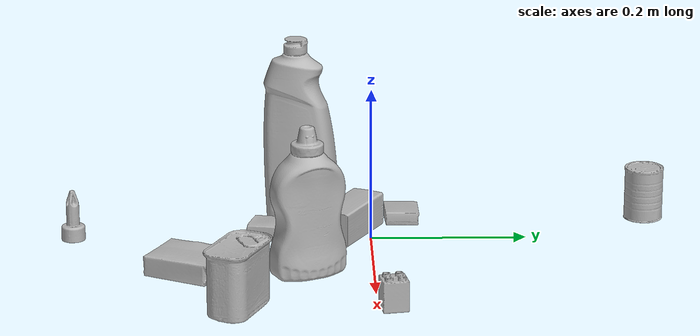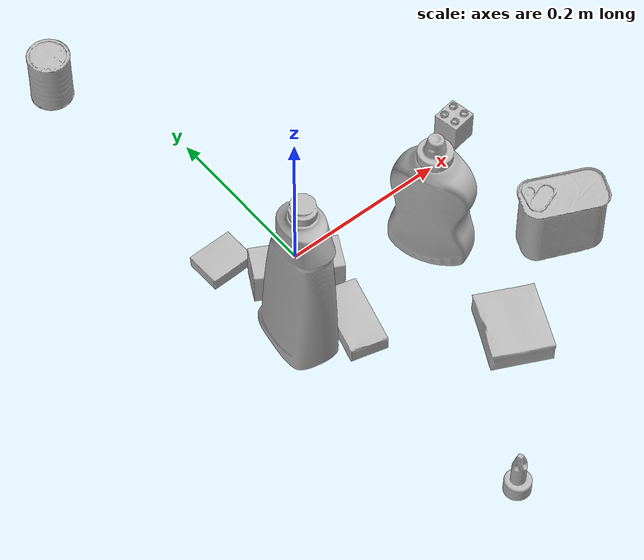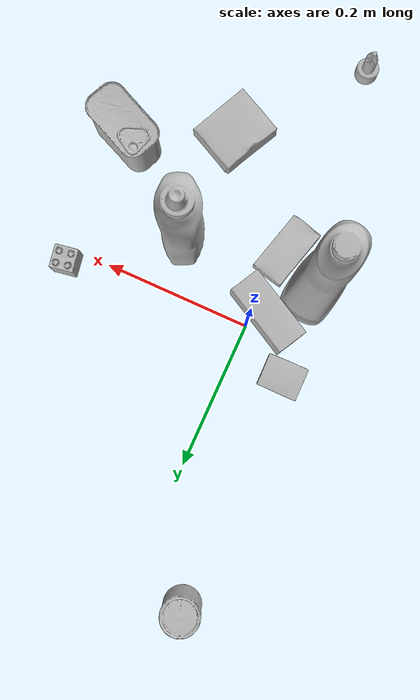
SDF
<sdf version="1.4">
  <world name="default">
    <light name="light1" type="point">
      <pose>0 0 1 0 0 0</pose>
      <diffuse>3 3 3 1</diffuse>
      <specular>3 3 3 1</specular>
    </light>
    <light name="light2" type="point">
      <pose>0 0.5 2 0 0 0</pose>
      <diffuse>1 1 1 1</diffuse>
      <specular>1 1 1 1</specular>
    </light>
    <light name="light3" type="point">
      <pose>0 0.5 2 0 0 0</pose>
      <diffuse>3 3 3 1</diffuse>
      <specular>3 3 3 1</specular>
    </light>
    <scene>
      <ambient>0.7 0.7 0.7</ambient>
    </scene>
    <model name="bottle1">
      <link name="link_bottle1">
        <collision name="default">
          <geometry>
            <mesh>
              <uri>model://bleach_cleanser/collision_meshes/collision.obj</uri>
              <scale>1.0 1.0 1.0</scale>
            </mesh>
          </geometry>
          <surface>
            <friction>
              <ode>
                <mu>0.5</mu>
                <mu2>0.5</mu2>
              </ode>
            </friction>
          <contact>
        <ode>
            <max_vel>0</max_vel>
            <min_depth>0.0001</min_depth>
            <kp>1e8</kp>
        </ode>
    </contact></surface>
        </collision>
        <visual name="default">
          <geometry>
            <mesh>
              <uri>model://bleach_cleanser/visual_meshes/visual.dae</uri>
              <scale>1.0 1.0 1.0</scale>
            </mesh>
          </geometry>
        </visual>
        <inertial>
          <mass>1.578364610671997</mass>
          <pose>0.00012193182919872925 0.003783882362768054 -0.024421613663434982 -0.07381669869228723 0.000420116582496686 -0.006875050642452563</pose>
          <inertia>
            <ixx>0.00768213</ixx>
            <iyy>0.0071586203</iyy>
            <izz>0.0013134446</izz>
            <ixy>0</ixy>
            <ixz>0</ixz>
            <iyz>0</iyz>
          </inertia>
        </inertial>
      </link>
      <pose>-0.06366746127605438 -0.08682761341333389 0.12578411400318146 -0.00019965540483122816 1.6549499033211615e-05 2.9761389099734803</pose>
    </model>
    <model name="bottle2">
      <link name="link_bottle2">
        <collision name="default">
          <geometry>
            <mesh>
              <uri>model://mustard_bottle/collision_meshes/collision.obj</uri>
              <scale>1.0 1.0 1.0</scale>
            </mesh>
          </geometry>
          <surface>
            <friction>
              <ode>
                <mu>0.5</mu>
                <mu2>0.5</mu2>
              </ode>
            </friction>
          <contact>
        <ode>
            <max_vel>0</max_vel>
            <min_depth>0.0001</min_depth>
            <kp>1e8</kp>
        </ode>
    </contact></surface>
        </collision>
        <visual name="default">
          <geometry>
            <mesh>
              <uri>model://mustard_bottle/visual_meshes/visual.dae</uri>
              <scale>1.0 1.0 1.0</scale>
            </mesh>
          </geometry>
        </visual>
        <inertial>
          <mass>0.5896905064582825</mass>
          <pose>0.000503245391882956 -0.00015647403779439628 -0.0174757931381464 0.00041823284967905286 0.0009465779461724547 0.024853724225743102</pose>
          <inertia>
            <ixx>0.00163749</ixx>
            <iyy>0.0014367587</iyy>
            <izz>0.00043156123</izz>
            <ixy>0</ixy>
            <ixz>0</ixz>
            <iyz>0</iyz>
          </inertia>
        </inertial>
      </link>
      <pose>0.12912291288375854 -0.08223581314086914 0.09615198522806168 1.507550120382504e-05 1.6568548082052075e-05 -2.7041206804033995</pose>
    </model>
    <model name="toy1">
      <link name="link_toy1">
        <collision name="default">
          <geometry>
            <mesh>
              <uri>model://b_lego_duplo/collision_meshes/collision.obj</uri>
              <scale>1.0 1.0 1.0</scale>
            </mesh>
          </geometry>
          <surface>
            <friction>
              <ode>
                <mu>0.5</mu>
                <mu2>0.5</mu2>
              </ode>
            </friction>
          <contact>
        <ode>
            <max_vel>0</max_vel>
            <min_depth>0.0001</min_depth>
            <kp>1e8</kp>
        </ode>
    </contact></surface>
        </collision>
        <visual name="default">
          <geometry>
            <mesh>
              <uri>model://b_lego_duplo/visual_meshes/visual.dae</uri>
              <scale>1.0 1.0 1.0</scale>
            </mesh>
          </geometry>
        </visual>
        <inertial>
          <mass>0.04927889630198479</mass>
          <pose>-0.00011053016351070255 -9.152428901870735e-06 0.0019294293597340584 -0.03749545918935276 -0.026353596882306905 0.4519115393215097</pose>
          <inertia>
            <ixx>1.0085294e-05</ixx>
            <iyy>1.015309e-05</iyy>
            <izz>8.985672e-06</izz>
            <ixy>0</ixy>
            <ixz>0</ixz>
            <iyz>0</iyz>
          </inertia>
        </inertial>
      </link>
      <pose>0.25004249811172485 0.019846877083182335 0.021814990788698196 9.945782184161883e-06 7.047268553255135e-06 -2.9760426735541894</pose>
    </model>
    <model name="toy2">
      <link name="link_toy2">
        <collision name="default">
          <geometry>
            <mesh>
              <uri>model://d_toy_airplane/collision_meshes/collision.obj</uri>
              <scale>1.0 1.0 1.0</scale>
            </mesh>
          </geometry>
          <surface>
            <friction>
              <ode>
                <mu>0.5</mu>
                <mu2>0.5</mu2>
              </ode>
            </friction>
          <contact>
        <ode>
            <max_vel>0</max_vel>
            <min_depth>0.0001</min_depth>
            <kp>1e8</kp>
        </ode>
    </contact></surface>
        </collision>
        <visual name="default">
          <geometry>
            <mesh>
              <uri>model://d_toy_airplane/visual_meshes/visual.dae</uri>
              <scale>1.0 1.0 1.0</scale>
            </mesh>
          </geometry>
        </visual>
        <inertial>
          <mass>0.023543989285826683</mass>
          <pose>9.41029647947289e-05 -5.8093268307857215e-05 -0.011728093028068542 0.0002670074791080515 0.004678977428991067 0.5194709842729006</pose>
          <inertia>
            <ixx>7.058034e-06</ixx>
            <iyy>7.063356e-06</iyy>
            <izz>2.1308651e-06</izz>
            <ixy>0</ixy>
            <ixz>0</ixz>
            <iyz>0</iyz>
          </inertia>
        </inertial>
      </link>
      <pose>-0.007845336571335793 -0.38434624671936035 0.03333836793899536 0.00022262659426458342 -5.6140053650335023e-05 -2.6771179696365093</pose>
    </model>
    <model name="can1">
      <link name="link_can1">
        <collision name="default">
          <geometry>
            <mesh>
              <uri>model://master_chef_can/collision_meshes/collision.obj</uri>
              <scale>0.5 0.5 0.5</scale>
            </mesh>
          </geometry>
          <surface>
            <friction>
              <ode>
                <mu>0.5</mu>
                <mu2>0.5</mu2>
              </ode>
            </friction>
          <contact>
        <ode>
            <max_vel>0</max_vel>
            <min_depth>0.0001</min_depth>
            <kp>1e8</kp>
        </ode>
    </contact></surface>
        </collision>
        <visual name="default">
          <geometry>
            <mesh>
              <uri>model://master_chef_can/visual_meshes/visual.dae</uri>
              <scale>0.5 0.5 0.5</scale>
            </mesh>
          </geometry>
        </visual>
        <inertial>
          <mass>0.13489052653312683</mass>
          <pose>-4.6619643399026245e-05 1.392684936263322e-07 -5.080000119050965e-05 -0.0017995055981966167 0.0006479432683086387 -0.6102521024359563</pose>
          <inertia>
            <ixx>7.9171594e-05</ixx>
            <iyy>7.85889e-05</iyy>
            <izz>4.3748354e-05</izz>
            <ixy>0</ixy>
            <ixz>0</ixz>
            <iyz>0</iyz>
          </inertia>
        </inertial>
      </link>
      <pose>-0.0737101212143898 0.36242198944091797 0.035301994532346725 -1.4487559760160618e-06 -1.1022901866482265e-06 -0.7635698203679321</pose>
    </model>
    <model name="can2">
      <link name="link_can2">
        <collision name="default">
          <geometry>
            <mesh>
              <uri>model://potted_meat_can/collision_meshes/collision.obj</uri>
              <scale>1.0 1.0 1.0</scale>
            </mesh>
          </geometry>
          <surface>
            <friction>
              <ode>
                <mu>0.5</mu>
                <mu2>0.5</mu2>
              </ode>
            </friction>
          <contact>
        <ode>
            <max_vel>0</max_vel>
            <min_depth>0.0001</min_depth>
            <kp>1e8</kp>
        </ode>
    </contact></surface>
        </collision>
        <visual name="default">
          <geometry>
            <mesh>
              <uri>model://potted_meat_can/visual_meshes/visual.dae</uri>
              <scale>1.0 1.0 1.0</scale>
            </mesh>
          </geometry>
        </visual>
        <inertial>
          <mass>0.4512253701686859</mass>
          <pose>0.00022888150124344975 -5.9891150158364326e-05 -0.0006367433816194534 -0.028093371406289817 -0.007232609295346345 0.015406271951796056</pose>
          <inertia>
            <ixx>0.00058045425</ixx>
            <iyy>0.00035267006</iyy>
            <izz>0.00042216998</izz>
            <ixy>0</ixy>
            <ixz>0</ixz>
            <iyz>0</iyz>
          </inertia>
        </inertial>
      </link>
      <pose>0.24754880368709564 -0.16640114784240723 0.04212799668312073 -7.924037496093655e-08 -2.0962729620397566e-07 -2.0050707055729564</pose>
    </model>
    <model name="box1">
      <link name="link_box1">
        <collision name="default">
          <geometry>
            <mesh>
              <uri>model://pudding_box/collision_meshes/collision.obj</uri>
              <scale>0.5 0.5 0.5</scale>
            </mesh>
          </geometry>
          <surface>
            <friction>
              <ode>
                <mu>0.5</mu>
                <mu2>0.5</mu2>
              </ode>
            </friction>
          <contact>
        <ode>
            <max_vel>0</max_vel>
            <min_depth>0.0001</min_depth>
            <kp>1e8</kp>
        </ode>
    </contact></surface>
        </collision>
        <visual name="default">
          <geometry>
            <mesh>
              <uri>model://pudding_box/visual_meshes/visual.dae</uri>
              <scale>0.5 0.5 0.5</scale>
            </mesh>
          </geometry>
        </visual>
        <inertial>
          <mass>0.02510015107691288</mass>
          <pose>0.00024474109522998333 0.0004033942532259971 -0.0002594413817860186 0.005213101332996491 -0.0066037987089797995 0.020079823298230236</pose>
          <inertia>
            <ixx>7.093607e-06</ixx>
            <iyy>4.7726294e-06</iyy>
            <izz>1.04755645e-05</izz>
            <ixy>0</ixy>
            <ixz>0</ixz>
            <iyz>0</iyz>
          </inertia>
        </inertial>
      </link>
      <pose>-0.0719890296459198 0.04202636331319809 0.009862905368208885 0.022347237756785744 -0.011392660343939515 -1.5622873688184218</pose>
    </model>
    <model name="box2">
      <link name="link_box2">
        <collision name="default">
          <geometry>
            <mesh>
              <uri>model://gelatin_box/collision_meshes/collision.obj</uri>
              <scale>1.0 1.0 1.0</scale>
            </mesh>
          </geometry>
          <surface>
            <friction>
              <ode>
                <mu>0.5</mu>
                <mu2>0.5</mu2>
              </ode>
            </friction>
          <contact>
        <ode>
            <max_vel>0</max_vel>
            <min_depth>0.0001</min_depth>
            <kp>1e8</kp>
        </ode>
    </contact></surface>
        </collision>
        <visual name="default">
          <geometry>
            <mesh>
              <uri>model://gelatin_box/visual_meshes/visual.dae</uri>
              <scale>1.0 1.0 1.0</scale>
            </mesh>
          </geometry>
        </visual>
        <inertial>
          <mass>0.2452477514743805</mass>
          <pose>0.000431961816502735 0.00011156871187267825 -0.0003640321083366871 -0.0010503720803081407 -0.004755818225601415 0.01644055574590794</pose>
          <inertia>
            <ixx>0.0001731249</ixx>
            <iyy>0.0001236622</iyy>
            <izz>0.00026353472</izz>
            <ixy>0</ixy>
            <ixz>0</ixz>
            <iyz>0</iyz>
          </inertia>
        </inertial>
      </link>
      <pose>0.11982683837413788 -0.23199401795864105 0.015168310143053532 0.005597511188989699 -0.00730457598990359 2.6794553153525933</pose>
    </model>
    <model name="box3">
      <link name="link_box3">
        <collision name="default">
          <geometry>
            <mesh>
              <uri>model://sugar_box/collision_meshes/collision.obj</uri>
              <scale>0.5 0.5 0.5</scale>
            </mesh>
          </geometry>
          <surface>
            <friction>
              <ode>
                <mu>0.5</mu>
                <mu2>0.5</mu2>
              </ode>
            </friction>
          <contact>
        <ode>
            <max_vel>0</max_vel>
            <min_depth>0.0001</min_depth>
            <kp>1e8</kp>
        </ode>
    </contact></surface>
        </collision>
        <visual name="default">
          <geometry>
            <mesh>
              <uri>model://sugar_box/visual_meshes/visual.dae</uri>
              <scale>0.5 0.5 0.5</scale>
            </mesh>
          </geometry>
        </visual>
        <inertial>
          <mass>0.12277840822935104</mass>
          <pose>0.0005171863595023751 1.9245549992774613e-05 -0.00018182402709499002 -0.0004046257474220826 0.0010506635214397083 0.0026153787892127145</pose>
          <inertia>
            <ixx>2.5574656e-05</ixx>
            <iyy>8.2662555e-05</iyy>
            <izz>9.895694e-05</izz>
            <ixy>0</ixy>
            <ixz>0</ixz>
            <iyz>0</iyz>
          </inertia>
        </inertial>
      </link>
      <pose>-0.00918641034513712 -0.11326224356889725 0.011399304494261742 0.0007755112259388102 -0.023432436654135386 1.3068131312923323</pose>
    </model>
    <model name="box4">
      <link name="link_box4">
        <collision name="default">
          <geometry>
            <mesh>
              <uri>model://wood_block/collision_meshes/collision.obj</uri>
              <scale>0.5 0.5 0.5</scale>
            </mesh>
          </geometry>
          <surface>
            <friction>
              <ode>
                <mu>0.5</mu>
                <mu2>0.5</mu2>
              </ode>
            </friction>
          <contact>
        <ode>
            <max_vel>0</max_vel>
            <min_depth>0.0001</min_depth>
            <kp>1e8</kp>
        </ode>
    </contact></surface>
        </collision>
        <visual name="default">
          <geometry>
            <mesh>
              <uri>model://wood_block/visual_meshes/visual.dae</uri>
              <scale>0.5 0.5 0.5</scale>
            </mesh>
          </geometry>
        </visual>
        <inertial>
          <mass>0.2967980206012726</mass>
          <pose>-2.9066577553749084e-06 -0.00028540470520965755 0.00013204291462898254 -0.05220902064674581 -0.005192696668457315 -0.006861378272965977</pose>
          <inertia>
            <ixx>9.929016e-05</ixx>
            <iyy>0.00031365763</iyy>
            <izz>0.00031248436</izz>
            <ixy>0</ixy>
            <ixz>0</ixz>
            <iyz>0</iyz>
          </inertia>
        </inertial>
      </link>
      <pose>-0.019318977370858192 -0.02594691701233387 0.022629264742136 -0.00520846791039501 0.005718739361402631 2.6492377184522358</pose>
    </model>
  <physics type="ode">
      <max_contacts>50</max_contacts>
      <ode>
        <solver>
          <type>quick</type>
          <iters>75</iters>
        </solver>
        <constraints>
          <contact_max_correcting_vel>0</contact_max_correcting_vel>
          <contact_surface_layer>0</contact_surface_layer>
        </constraints>
      </ode>
    </physics></world>
</sdf>
